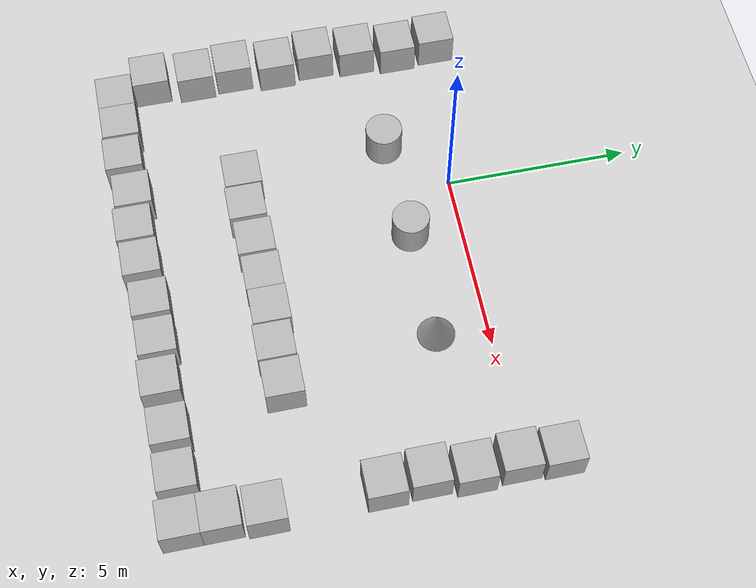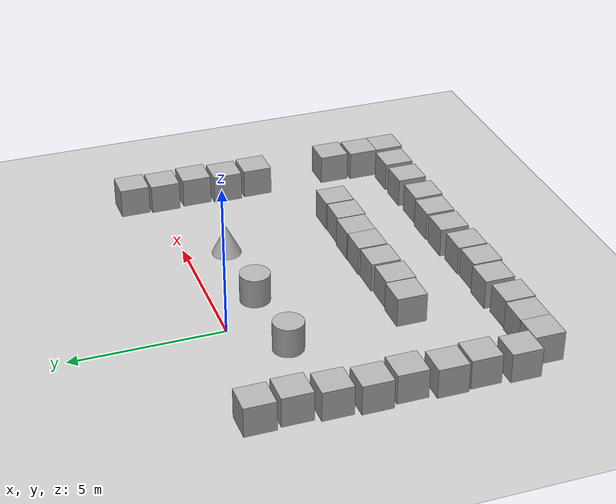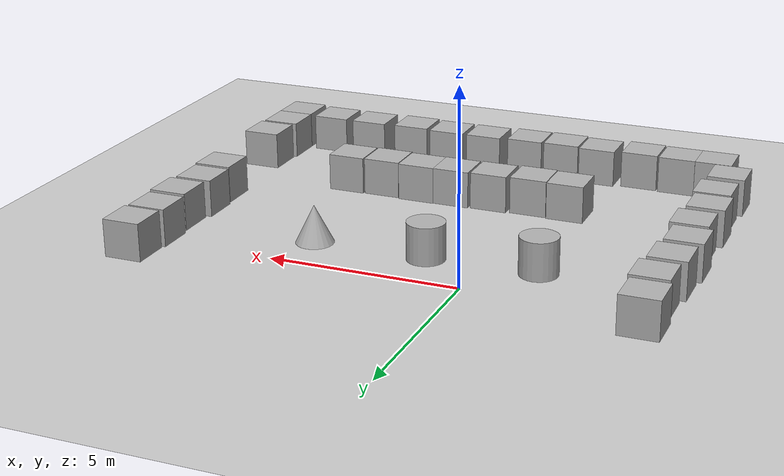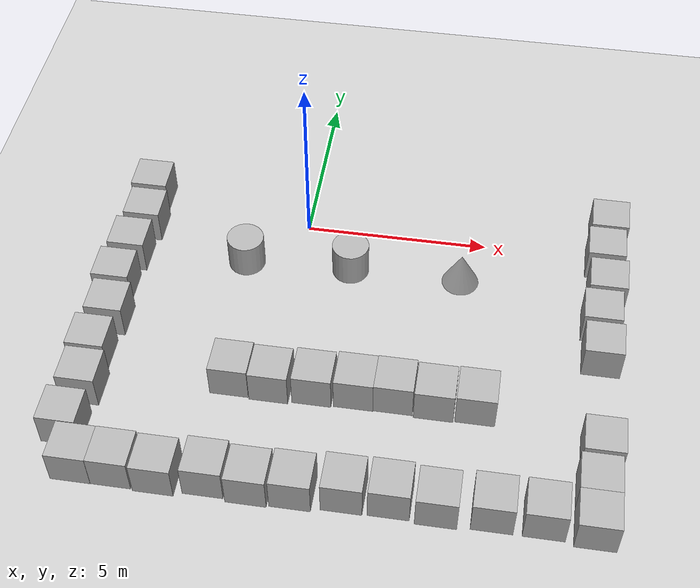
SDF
<sdf version="1.10">
 <world name="supermarket_world">
  <model name="ground_plane">
   <static>true</static>
   <link name="link">
    <collision name="collision">
     <geometry><plane><normal>0 0 1</normal><size>1 1</size></plane></geometry>
    </collision>
    <visual name="visual">
     <geometry><plane><normal>0 0 1</normal><size>100 100</size></plane></geometry>
     <material>
      <ambient>0.800000012 0.800000012 0.800000012 1</ambient>
      <diffuse>0.800000012 0.800000012 0.800000012 1</diffuse>
      <specular>0.800000012 0.800000012 0.800000012 1</specular>
     </material>
    </visual>
    <inertial>
     <mass>1</mass>
     <inertia><ixx>1</ixx><ixy>0</ixy><ixz>0</ixz><iyy>1</iyy><iyz>0</iyz><izz>1</izz></inertia>
    </inertial>
   </link>
  </model>
  <model name="box_6">
   <pose>8.3599477570648091 0.88502298679097557 0.4999990199706873 -5.4766448174674108e-17 -7.8348344244661134e-20 -3.3200572492622903e-17</pose>
   <link name="box_link">
    <inertial>
     <inertia><ixx>0.16666</ixx><ixy>0</ixy><ixz>0</ixz><iyy>0.16666</iyy><iyz>0</iyz><izz>0.16666</izz></inertia>
     <mass>1</mass>
    </inertial>
    <collision name="box_collision"><geometry><box><size>1 1 1</size></box></geometry></collision>
    <visual name="box_visual">
     <geometry><box><size>1 1 1</size></box></geometry>
     <material>
      <ambient>0.300000012 0.300000012 0.300000012 1</ambient>
      <diffuse>0.699999988 0.699999988 0.699999988 1</diffuse>
      <specular>1 1 1 1</specular>
     </material>
    </visual>
   </link>
   <static>false</static>
  </model>
  <model name="box_7">
   <pose>8.2921380726471874 -0.18658887087335663 0.49999901997068646 5.4312585427724196e-17 -7.3745845500765171e-19 -1.1733470305338631e-16</pose>
   <link name="box_link">
    <inertial>
     <inertia><ixx>0.16666</ixx><ixy>0</ixy><ixz>0</ixz><iyy>0.16666</iyy><iyz>0</iyz><izz>0.16666</izz></inertia>
     <mass>1</mass>
    </inertial>
    <collision name="box_collision"><geometry><box><size>1 1 1</size></box></geometry></collision>
    <visual name="box_visual">
     <geometry><box><size>1 1 1</size></box></geometry>
     <material>
      <ambient>0.300000012 0.300000012 0.300000012 1</ambient>
      <diffuse>0.699999988 0.699999988 0.699999988 1</diffuse>
      <specular>1 1 1 1</specular>
     </material>
    </visual>
   </link>
   <static>false</static>
  </model>
  <model name="box_8">
   <pose>8.35994921766601 -1.3357347856292385 0.49999901997068585 -3.5316034493105225e-19 -5.4564616593038525e-17 -1.4888627611804775e-16</pose>
   <link name="box_link">
    <inertial>
     <inertia><ixx>0.16666</ixx><ixy>0</ixy><ixz>0</ixz><iyy>0.16666</iyy><iyz>0</iyz><izz>0.16666</izz></inertia>
     <mass>1</mass>
    </inertial>
    <collision name="box_collision"><geometry><box><size>1 1 1</size></box></geometry></collision>
    <visual name="box_visual">
     <geometry><box><size>1 1 1</size></box></geometry>
     <material>
      <ambient>0.300000012 0.300000012 0.300000012 1</ambient>
      <diffuse>0.699999988 0.699999988 0.699999988 1</diffuse>
      <specular>1 1 1 1</specular>
     </material>
    </visual>
   </link>
   <static>false</static>
  </model>
  <model name="box_9">
   <pose>8.2394319175730963 -2.4393221170170669 0.49999901997068535 -1.2747921174698496e-19 -5.5453399765897063e-17 -1.5229980923750203e-16</pose>
   <link name="box_link">
    <inertial>
     <inertia><ixx>0.16666</ixx><ixy>0</ixy><ixz>0</ixz><iyy>0.16666</iyy><iyz>0</iyz><izz>0.16666</izz></inertia>
     <mass>1</mass>
    </inertial>
    <collision name="box_collision"><geometry><box><size>1 1 1</size></box></geometry></collision>
    <visual name="box_visual">
     <geometry><box><size>1 1 1</size></box></geometry>
     <material>
      <ambient>0.300000012 0.300000012 0.300000012 1</ambient>
      <diffuse>0.699999988 0.699999988 0.699999988 1</diffuse>
      <specular>1 1 1 1</specular>
     </material>
    </visual>
   </link>
   <static>false</static>
  </model>
  <model name="box_10">
   <pose>8.292137985640025 -3.5504486111469227 0.49999901997068585 2.5119105073607024e-19 -5.4565259392399407e-17 2.6240833761110909e-17</pose>
   <link name="box_link">
    <inertial>
     <inertia><ixx>0.16666</ixx><ixy>0</ixy><ixz>0</ixz><iyy>0.16666</iyy><iyz>0</iyz><izz>0.16666</izz></inertia>
     <mass>1</mass>
    </inertial>
    <collision name="box_collision"><geometry><box><size>1 1 1</size></box></geometry></collision>
    <visual name="box_visual">
     <geometry><box><size>1 1 1</size></box></geometry>
     <material>
      <ambient>0.300000012 0.300000012 0.300000012 1</ambient>
      <diffuse>0.699999988 0.699999988 0.699999988 1</diffuse>
      <specular>1 1 1 1</specular>
     </material>
    </visual>
   </link>
   <static>false</static>
  </model>
  <model name="box_11">
   <pose>8.3599484130359762 -6.4911661344040112 0.49999901997068685 1.2184321968921324e-19 -5.4896099746309551e-17 -1.4904533393108512e-16</pose>
   <link name="box_link">
    <inertial>
     <inertia><ixx>0.16666</ixx><ixy>0</ixy><ixz>0</ixz><iyy>0.16666</iyy><iyz>0</iyz><izz>0.16666</izz></inertia>
     <mass>1</mass>
    </inertial>
    <collision name="box_collision"><geometry><box><size>1 1 1</size></box></geometry></collision>
    <visual name="box_visual">
     <geometry><box><size>1 1 1</size></box></geometry>
     <material>
      <ambient>0.300000012 0.300000012 0.300000012 1</ambient>
      <diffuse>0.699999988 0.699999988 0.699999988 1</diffuse>
      <specular>1 1 1 1</specular>
     </material>
    </visual>
   </link>
   <static>false</static>
  </model>
  <model name="box_12">
   <pose>8.292138975080519 -7.5816466128785995 0.4999990199706868 -2.2698675383332317e-13 -2.2643068329978488e-13 1.644982497892697e-06</pose>
   <link name="box_link">
    <inertial>
     <inertia><ixx>0.16666</ixx><ixy>0</ixy><ixz>0</ixz><iyy>0.16666</iyy><iyz>0</iyz><izz>0.16666</izz></inertia>
     <mass>1</mass>
    </inertial>
    <collision name="box_collision"><geometry><box><size>1 1 1</size></box></geometry></collision>
    <visual name="box_visual">
     <geometry><box><size>1 1 1</size></box></geometry>
     <material>
      <ambient>0.300000012 0.300000012 0.300000012 1</ambient>
      <diffuse>0.699999988 0.699999988 0.699999988 1</diffuse>
      <specular>1 1 1 1</specular>
     </material>
    </visual>
   </link>
   <static>false</static>
  </model>
  <model name="box_13">
   <pose>8.292137527113967 -8.5816466128823734 0.49999901997068597 2.2076708296356033e-13 -2.2431498138324399e-13 1.6449824978575932e-06</pose>
   <link name="box_link">
    <inertial>
     <inertia><ixx>0.16666</ixx><ixy>0</ixy><ixz>0</ixz><iyy>0.16666</iyy><iyz>0</iyz><izz>0.16666</izz></inertia>
     <mass>1</mass>
    </inertial>
    <collision name="box_collision"><geometry><box><size>1 1 1</size></box></geometry></collision>
    <visual name="box_visual">
     <geometry><box><size>1 1 1</size></box></geometry>
     <material>
      <ambient>0.300000012 0.300000012 0.300000012 1</ambient>
      <diffuse>0.699999988 0.699999988 0.699999988 1</diffuse>
      <specular>1 1 1 1</specular>
     </material>
    </visual>
   </link>
   <static>false</static>
  </model>
  <model name="box_14">
   <pose>7.1004684341563049 -8.4840748178244016 0.49999901997068641 1.4005283284370249e-19 -5.5581335430422208e-17 -1.7015719702994222e-16</pose>
   <link name="box_link">
    <inertial>
     <inertia><ixx>0.16666</ixx><ixy>0</ixy><ixz>0</ixz><iyy>0.16666</iyy><iyz>0</iyz><izz>0.16666</izz></inertia>
     <mass>1</mass>
    </inertial>
    <collision name="box_collision"><geometry><box><size>1 1 1</size></box></geometry></collision>
    <visual name="box_visual">
     <geometry><box><size>1 1 1</size></box></geometry>
     <material>
      <ambient>0.300000012 0.300000012 0.300000012 1</ambient>
      <diffuse>0.699999988 0.699999988 0.699999988 1</diffuse>
      <specular>1 1 1 1</specular>
     </material>
    </visual>
   </link>
   <static>false</static>
  </model>
  <model name="box_15">
   <pose>5.8868902017453415 -8.483177013111673 0.49999901997068541 5.0667621786247898e-19 -5.4722843813639268e-17 -2.007705083077993e-16</pose>
   <link name="box_link">
    <inertial>
     <inertia><ixx>0.16666</ixx><ixy>0</ixy><ixz>0</ixz><iyy>0.16666</iyy><iyz>0</iyz><izz>0.16666</izz></inertia>
     <mass>1</mass>
    </inertial>
    <collision name="box_collision"><geometry><box><size>1 1 1</size></box></geometry></collision>
    <visual name="box_visual">
     <geometry><box><size>1 1 1</size></box></geometry>
     <material>
      <ambient>0.300000012 0.300000012 0.300000012 1</ambient>
      <diffuse>0.699999988 0.699999988 0.699999988 1</diffuse>
      <specular>1 1 1 1</specular>
     </material>
    </visual>
   </link>
   <static>false</static>
  </model>
  <model name="box_16">
   <pose>4.5793990559907982 -8.5402041557433961 0.49999901997068702 3.4103993743557963e-19 -5.4650942151699583e-17 -1.7995828096061792e-16</pose>
   <link name="box_link">
    <inertial>
     <inertia><ixx>0.16666</ixx><ixy>0</ixy><ixz>0</ixz><iyy>0.16666</iyy><iyz>0</iyz><izz>0.16666</izz></inertia>
     <mass>1</mass>
    </inertial>
    <collision name="box_collision"><geometry><box><size>1 1 1</size></box></geometry></collision>
    <visual name="box_visual">
     <geometry><box><size>1 1 1</size></box></geometry>
     <material>
      <ambient>0.300000012 0.300000012 0.300000012 1</ambient>
      <diffuse>0.699999988 0.699999988 0.699999988 1</diffuse>
      <specular>1 1 1 1</specular>
     </material>
    </visual>
   </link>
   <static>false</static>
  </model>
  <model name="box_17">
   <pose>3.4560056745353656 -8.4785526730327092 0.49999901997068719 2.9975159588562845e-19 -5.5282934451014012e-17 -1.4885680688878971e-16</pose>
   <link name="box_link">
    <inertial>
     <inertia><ixx>0.16666</ixx><ixy>0</ixy><ixz>0</ixz><iyy>0.16666</iyy><iyz>0</iyz><izz>0.16666</izz></inertia>
     <mass>1</mass>
    </inertial>
    <collision name="box_collision"><geometry><box><size>1 1 1</size></box></geometry></collision>
    <visual name="box_visual">
     <geometry><box><size>1 1 1</size></box></geometry>
     <material>
      <ambient>0.300000012 0.300000012 0.300000012 1</ambient>
      <diffuse>0.699999988 0.699999988 0.699999988 1</diffuse>
      <specular>1 1 1 1</specular>
     </material>
    </visual>
   </link>
   <static>false</static>
  </model>
  <model name="box_18">
   <pose>2.3368050941580982 -8.4969861346112285 0.49999901997068563 8.9921862608866556e-19 -5.4810453830300779e-17 -1.4942994026736365e-16</pose>
   <link name="box_link">
    <inertial>
     <inertia><ixx>0.16666</ixx><ixy>0</ixy><ixz>0</ixz><iyy>0.16666</iyy><iyz>0</iyz><izz>0.16666</izz></inertia>
     <mass>1</mass>
    </inertial>
    <collision name="box_collision"><geometry><box><size>1 1 1</size></box></geometry></collision>
    <visual name="box_visual">
     <geometry><box><size>1 1 1</size></box></geometry>
     <material>
      <ambient>0.300000012 0.300000012 0.300000012 1</ambient>
      <diffuse>0.699999988 0.699999988 0.699999988 1</diffuse>
      <specular>1 1 1 1</specular>
     </material>
    </visual>
   </link>
   <static>false</static>
  </model>
  <model name="box_19">
   <pose>1.1209091555754185 -8.5856432976933625 0.49999901997068574 2.8614643890754435e-19 -5.5290314063770497e-17 -1.5071632751643689e-16</pose>
   <link name="box_link">
    <inertial>
     <inertia><ixx>0.16666</ixx><ixy>0</ixy><ixz>0</ixz><iyy>0.16666</iyy><iyz>0</iyz><izz>0.16666</izz></inertia>
     <mass>1</mass>
    </inertial>
    <collision name="box_collision"><geometry><box><size>1 1 1</size></box></geometry></collision>
    <visual name="box_visual">
     <geometry><box><size>1 1 1</size></box></geometry>
     <material>
      <ambient>0.300000012 0.300000012 0.300000012 1</ambient>
      <diffuse>0.699999988 0.699999988 0.699999988 1</diffuse>
      <specular>1 1 1 1</specular>
     </material>
    </visual>
   </link>
   <static>false</static>
  </model>
  <model name="box_20">
   <pose>0.063885025016571007 -8.6244510410214197 0.49999901997068608 3.8644102242571229e-17 1.718197545714921e-17 -7.6517660015406847e-17</pose>
   <link name="box_link">
    <inertial>
     <inertia><ixx>0.16666</ixx><ixy>0</ixy><ixz>0</ixz><iyy>0.16666</iyy><iyz>0</iyz><izz>0.16666</izz></inertia>
     <mass>1</mass>
    </inertial>
    <collision name="box_collision"><geometry><box><size>1 1 1</size></box></geometry></collision>
    <visual name="box_visual">
     <geometry><box><size>1 1 1</size></box></geometry>
     <material>
      <ambient>0.300000012 0.300000012 0.300000012 1</ambient>
      <diffuse>0.699999988 0.699999988 0.699999988 1</diffuse>
      <specular>1 1 1 1</specular>
     </material>
    </visual>
   </link>
   <static>false</static>
  </model>
  <model name="box_21">
   <pose>-0.99485717680037133 -8.5476532571397055 0.49999901997068674 5.5218092506242785e-17 1.3141559468966683e-19 -5.8559794383059209e-17</pose>
   <link name="box_link">
    <inertial>
     <inertia><ixx>0.16666</ixx><ixy>0</ixy><ixz>0</ixz><iyy>0.16666</iyy><iyz>0</iyz><izz>0.16666</izz></inertia>
     <mass>1</mass>
    </inertial>
    <collision name="box_collision"><geometry><box><size>1 1 1</size></box></geometry></collision>
    <visual name="box_visual">
     <geometry><box><size>1 1 1</size></box></geometry>
     <material>
      <ambient>0.300000012 0.300000012 0.300000012 1</ambient>
      <diffuse>0.699999988 0.699999988 0.699999988 1</diffuse>
      <specular>1 1 1 1</specular>
     </material>
    </visual>
   </link>
   <static>false</static>
  </model>
  <model name="box_39">
   <pose>-4.6128045214521469 0.55596748361584802 0.49999901997068608 2.2393602201536981e-13 2.2643059158803212e-13 2.2042239139203951e-06</pose>
   <link name="box_link">
    <inertial>
     <inertia><ixx>0.16666</ixx><ixy>0</ixy><ixz>0</ixz><iyy>0.16666</iyy><iyz>0</iyz><izz>0.16666</izz></inertia>
     <mass>1</mass>
    </inertial>
    <collision name="box_collision"><geometry><box><size>1 1 1</size></box></geometry></collision>
    <visual name="box_visual">
     <geometry><box><size>1 1 1</size></box></geometry>
     <material>
      <ambient>0.300000012 0.300000012 0.300000012 1</ambient>
      <diffuse>0.699999988 0.699999988 0.699999988 1</diffuse>
      <specular>1 1 1 1</specular>
     </material>
    </visual>
   </link>
   <static>false</static>
  </model>
  <model name="box_40">
   <pose>-4.5346118938632927 -0.58557924364175995 0.49999901997068608 5.4957683854229216e-17 2.9292237887427006e-19 -9.6652693541560514e-18</pose>
   <link name="box_link">
    <inertial>
     <inertia><ixx>0.16666</ixx><ixy>0</ixy><ixz>0</ixz><iyy>0.16666</iyy><iyz>0</iyz><izz>0.16666</izz></inertia>
     <mass>1</mass>
    </inertial>
    <collision name="box_collision"><geometry><box><size>1 1 1</size></box></geometry></collision>
    <visual name="box_visual">
     <geometry><box><size>1 1 1</size></box></geometry>
     <material>
      <ambient>0.300000012 0.300000012 0.300000012 1</ambient>
      <diffuse>0.699999988 0.699999988 0.699999988 1</diffuse>
      <specular>1 1 1 1</specular>
     </material>
    </visual>
   </link>
   <static>false</static>
  </model>
  <model name="box_41">
   <pose>-2.1881079715456799 -8.6569159477763904 0.49999901997068696 2.7576861036004744e-19 -5.5267676813728756e-17 -1.9406289881409713e-16</pose>
   <link name="box_link">
    <inertial>
     <inertia><ixx>0.16666</ixx><ixy>0</ixy><ixz>0</ixz><iyy>0.16666</iyy><iyz>0</iyz><izz>0.16666</izz></inertia>
     <mass>1</mass>
    </inertial>
    <collision name="box_collision"><geometry><box><size>1 1 1</size></box></geometry></collision>
    <visual name="box_visual">
     <geometry><box><size>1 1 1</size></box></geometry>
     <material>
      <ambient>0.300000012 0.300000012 0.300000012 1</ambient>
      <diffuse>0.699999988 0.699999988 0.699999988 1</diffuse>
      <specular>1 1 1 1</specular>
     </material>
    </visual>
   </link>
   <static>false</static>
  </model>
  <model name="box_42">
   <pose>-3.2418673977159189 -8.6182122048493426 0.49999901997068646 2.2349278668427696e-13 2.2482926953304254e-13 1.4687570711309109e-07</pose>
   <link name="box_link">
    <inertial>
     <inertia><ixx>0.16666</ixx><ixy>0</ixy><ixz>0</ixz><iyy>0.16666</iyy><iyz>0</iyz><izz>0.16666</izz></inertia>
     <mass>1</mass>
    </inertial>
    <collision name="box_collision"><geometry><box><size>1 1 1</size></box></geometry></collision>
    <visual name="box_visual">
     <geometry><box><size>1 1 1</size></box></geometry>
     <material>
      <ambient>0.300000012 0.300000012 0.300000012 1</ambient>
      <diffuse>0.699999988 0.699999988 0.699999988 1</diffuse>
      <specular>1 1 1 1</specular>
     </material>
    </visual>
   </link>
   <static>false</static>
  </model>
  <model name="box_43">
   <pose>-4.2418673969766756 -8.6240583757139682 0.49999901997068685 2.2684200548589859e-13 -2.2332126058016842e-13 1.4682695939761831e-07</pose>
   <link name="box_link">
    <inertial>
     <inertia><ixx>0.16666</ixx><ixy>0</ixy><ixz>0</ixz><iyy>0.16666</iyy><iyz>0</iyz><izz>0.16666</izz></inertia>
     <mass>1</mass>
    </inertial>
    <collision name="box_collision"><geometry><box><size>1 1 1</size></box></geometry></collision>
    <visual name="box_visual">
     <geometry><box><size>1 1 1</size></box></geometry>
     <material>
      <ambient>0.300000012 0.300000012 0.300000012 1</ambient>
      <diffuse>0.699999988 0.699999988 0.699999988 1</diffuse>
      <specular>1 1 1 1</specular>
     </material>
    </visual>
   </link>
   <static>false</static>
  </model>
  <model name="box_44">
   <pose>-4.6649373053284666 -1.7514064736367276 0.49999901997068696 -2.712652257318908e-19 -5.457372273114345e-17 -1.4888493519853e-16</pose>
   <link name="box_link">
    <inertial>
     <inertia><ixx>0.16666</ixx><ixy>0</ixy><ixz>0</ixz><iyy>0.16666</iyy><iyz>0</iyz><izz>0.16666</izz></inertia>
     <mass>1</mass>
    </inertial>
    <collision name="box_collision"><geometry><box><size>1 1 1</size></box></geometry></collision>
    <visual name="box_visual">
     <geometry><box><size>1 1 1</size></box></geometry>
     <material>
      <ambient>0.300000012 0.300000012 0.300000012 1</ambient>
      <diffuse>0.699999988 0.699999988 0.699999988 1</diffuse>
      <specular>1 1 1 1</specular>
     </material>
    </visual>
   </link>
   <static>false</static>
  </model>
  <model name="box_45">
   <pose>-4.7707237144238945 -2.9298629494288337 0.49999901997068585 4.4574160769235318e-19 -5.603786890950952e-17 -1.4828022000280738e-16</pose>
   <link name="box_link">
    <inertial>
     <inertia><ixx>0.16666</ixx><ixy>0</ixy><ixz>0</ixz><iyy>0.16666</iyy><iyz>0</iyz><izz>0.16666</izz></inertia>
     <mass>1</mass>
    </inertial>
    <collision name="box_collision"><geometry><box><size>1 1 1</size></box></geometry></collision>
    <visual name="box_visual">
     <geometry><box><size>1 1 1</size></box></geometry>
     <material>
      <ambient>0.300000012 0.300000012 0.300000012 1</ambient>
      <diffuse>0.699999988 0.699999988 0.699999988 1</diffuse>
      <specular>1 1 1 1</specular>
     </material>
    </visual>
   </link>
   <static>false</static>
  </model>
  <model name="box_46">
   <pose>-4.6348491865295589 -4.0655745578203657 0.49999901997068541 2.3135991589015909e-19 -5.4352187937575115e-17 -1.4953602061291092e-16</pose>
   <link name="box_link">
    <inertial>
     <inertia><ixx>0.16666</ixx><ixy>0</ixy><ixz>0</ixz><iyy>0.16666</iyy><iyz>0</iyz><izz>0.16666</izz></inertia>
     <mass>1</mass>
    </inertial>
    <collision name="box_collision"><geometry><box><size>1 1 1</size></box></geometry></collision>
    <visual name="box_visual">
     <geometry><box><size>1 1 1</size></box></geometry>
     <material>
      <ambient>0.300000012 0.300000012 0.300000012 1</ambient>
      <diffuse>0.699999988 0.699999988 0.699999988 1</diffuse>
      <specular>1 1 1 1</specular>
     </material>
    </visual>
   </link>
   <static>false</static>
  </model>
  <model name="box_47">
   <pose>-4.7707230229319517 -5.275420600263752 0.49999901997068646 6.0037976482516195e-19 -5.5015603844332259e-17 -1.503998351625595e-16</pose>
   <link name="box_link">
    <inertial>
     <inertia><ixx>0.16666</ixx><ixy>0</ixy><ixz>0</ixz><iyy>0.16666</iyy><iyz>0</iyz><izz>0.16666</izz></inertia>
     <mass>1</mass>
    </inertial>
    <collision name="box_collision"><geometry><box><size>1 1 1</size></box></geometry></collision>
    <visual name="box_visual">
     <geometry><box><size>1 1 1</size></box></geometry>
     <material>
      <ambient>0.300000012 0.300000012 0.300000012 1</ambient>
      <diffuse>0.699999988 0.699999988 0.699999988 1</diffuse>
      <specular>1 1 1 1</specular>
     </material>
    </visual>
   </link>
   <static>false</static>
  </model>
  <model name="box_48">
   <pose>-4.6903190441895237 -6.3633216132210517 0.49999901997068574 6.5094638094250305e-20 -5.4978811356181676e-17 -1.4831213721568048e-16</pose>
   <link name="box_link">
    <inertial>
     <inertia><ixx>0.16666</ixx><ixy>0</ixy><ixz>0</ixz><iyy>0.16666</iyy><iyz>0</iyz><izz>0.16666</izz></inertia>
     <mass>1</mass>
    </inertial>
    <collision name="box_collision"><geometry><box><size>1 1 1</size></box></geometry></collision>
    <visual name="box_visual">
     <geometry><box><size>1 1 1</size></box></geometry>
     <material>
      <ambient>0.300000012 0.300000012 0.300000012 1</ambient>
      <diffuse>0.699999988 0.699999988 0.699999988 1</diffuse>
      <specular>1 1 1 1</specular>
     </material>
    </visual>
   </link>
   <static>false</static>
  </model>
  <model name="box_49">
   <pose>-4.7947207584339306 -7.6123405254444796 0.49999901997068547 4.1951374572102127e-19 5.3998947685988208e-17 7.3234894436937971e-17</pose>
   <link name="box_link">
    <inertial>
     <inertia><ixx>0.16666</ixx><ixy>0</ixy><ixz>0</ixz><iyy>0.16666</iyy><iyz>0</iyz><izz>0.16666</izz></inertia>
     <mass>1</mass>
    </inertial>
    <collision name="box_collision"><geometry><box><size>1 1 1</size></box></geometry></collision>
    <visual name="box_visual">
     <geometry><box><size>1 1 1</size></box></geometry>
     <material>
      <ambient>0.300000012 0.300000012 0.300000012 1</ambient>
      <diffuse>0.699999988 0.699999988 0.699999988 1</diffuse>
      <specular>1 1 1 1</specular>
     </material>
    </visual>
   </link>
   <static>false</static>
  </model>
  <model name="box_64">
   <pose>5.2336465985425793 -5.5191032437784777 0.49999901997068524 -2.3857306278469071e-19 -5.5196187198336426e-17 -1.4815539363312702e-16</pose>
   <link name="box_link">
    <inertial>
     <inertia><ixx>0.16666</ixx><ixy>0</ixy><ixz>0</ixz><iyy>0.16666</iyy><iyz>0</iyz><izz>0.16666</izz></inertia>
     <mass>1</mass>
    </inertial>
    <collision name="box_collision"><geometry><box><size>1 1 1</size></box></geometry></collision>
    <visual name="box_visual">
     <geometry><box><size>1 1 1</size></box></geometry>
     <material>
      <ambient>0.300000012 0.300000012 0.300000012 1</ambient>
      <diffuse>0.699999988 0.699999988 0.699999988 1</diffuse>
      <specular>1 1 1 1</specular>
     </material>
    </visual>
   </link>
   <static>false</static>
  </model>
  <model name="box_65">
   <pose>4.1976097545647608 -5.543812047953586 0.4999990199706853 2.6349555747305811e-19 -5.5037712683849256e-17 -1.4804536551088521e-16</pose>
   <link name="box_link">
    <inertial>
     <inertia><ixx>0.16666</ixx><ixy>0</ixy><ixz>0</ixz><iyy>0.16666</iyy><iyz>0</iyz><izz>0.16666</izz></inertia>
     <mass>1</mass>
    </inertial>
    <collision name="box_collision"><geometry><box><size>1 1 1</size></box></geometry></collision>
    <visual name="box_visual">
     <geometry><box><size>1 1 1</size></box></geometry>
     <material>
      <ambient>0.300000012 0.300000012 0.300000012 1</ambient>
      <diffuse>0.699999988 0.699999988 0.699999988 1</diffuse>
      <specular>1 1 1 1</specular>
     </material>
    </visual>
   </link>
   <static>false</static>
  </model>
  <model name="box_66">
   <pose>3.1695528772318178 -5.4947899329310719 0.49999901997068624 -2.259851641029349e-13 2.2554081987978093e-13 3.4498173716493621e-06</pose>
   <link name="box_link">
    <inertial>
     <inertia><ixx>0.16666</ixx><ixy>0</ixy><ixz>0</ixz><iyy>0.16666</iyy><iyz>0</iyz><izz>0.16666</izz></inertia>
     <mass>1</mass>
    </inertial>
    <collision name="box_collision"><geometry><box><size>1 1 1</size></box></geometry></collision>
    <visual name="box_visual">
     <geometry><box><size>1 1 1</size></box></geometry>
     <material>
      <ambient>0.300000012 0.300000012 0.300000012 1</ambient>
      <diffuse>0.699999988 0.699999988 0.699999988 1</diffuse>
      <specular>1 1 1 1</specular>
     </material>
    </visual>
   </link>
   <static>false</static>
  </model>
  <model name="box_67">
   <pose>2.1695529356278169 -5.5117486546028918 0.49999901997068646 2.2565212740763925e-13 -2.2687370819293206e-13 3.4500291824428532e-06</pose>
   <link name="box_link">
    <inertial>
     <inertia><ixx>0.16666</ixx><ixy>0</ixy><ixz>0</ixz><iyy>0.16666</iyy><iyz>0</iyz><izz>0.16666</izz></inertia>
     <mass>1</mass>
    </inertial>
    <collision name="box_collision"><geometry><box><size>1 1 1</size></box></geometry></collision>
    <visual name="box_visual">
     <geometry><box><size>1 1 1</size></box></geometry>
     <material>
      <ambient>0.300000012 0.300000012 0.300000012 1</ambient>
      <diffuse>0.699999988 0.699999988 0.699999988 1</diffuse>
      <specular>1 1 1 1</specular>
     </material>
    </visual>
   </link>
   <static>false</static>
  </model>
  <model name="box_68">
   <pose>1.1110115866735821 -5.547493784916437 0.49999901997068619 2.4022578305007944e-19 -5.5377160075073371e-17 -1.4870663619955007e-16</pose>
   <link name="box_link">
    <inertial>
     <inertia><ixx>0.16666</ixx><ixy>0</ixy><ixz>0</ixz><iyy>0.16666</iyy><iyz>0</iyz><izz>0.16666</izz></inertia>
     <mass>1</mass>
    </inertial>
    <collision name="box_collision"><geometry><box><size>1 1 1</size></box></geometry></collision>
    <visual name="box_visual">
     <geometry><box><size>1 1 1</size></box></geometry>
     <material>
      <ambient>0.300000012 0.300000012 0.300000012 1</ambient>
      <diffuse>0.699999988 0.699999988 0.699999988 1</diffuse>
      <specular>1 1 1 1</specular>
     </material>
    </visual>
   </link>
   <static>false</static>
  </model>
  <model name="box_69">
   <pose>0.016060290425803814 -5.6064436573253262 0.49999901997068646 -5.0375488545114997e-17 -4.4912940976310665e-18 -6.7413810792287075e-17</pose>
   <link name="box_link">
    <inertial>
     <inertia><ixx>0.16666</ixx><ixy>0</ixy><ixz>0</ixz><iyy>0.16666</iyy><iyz>0</iyz><izz>0.16666</izz></inertia>
     <mass>1</mass>
    </inertial>
    <collision name="box_collision"><geometry><box><size>1 1 1</size></box></geometry></collision>
    <visual name="box_visual">
     <geometry><box><size>1 1 1</size></box></geometry>
     <material>
      <ambient>0.300000012 0.300000012 0.300000012 1</ambient>
      <diffuse>0.699999988 0.699999988 0.699999988 1</diffuse>
      <specular>1 1 1 1</specular>
     </material>
    </visual>
   </link>
   <static>false</static>
  </model>
  <model name="box_70">
   <pose>-1.0076200778333799 -5.5626199242556087 0.49999901997068713 -6.0679508685670782e-20 -5.5314525430499359e-17 -1.5193391988420357e-16</pose>
   <link name="box_link">
    <inertial>
     <inertia><ixx>0.16666</ixx><ixy>0</ixy><ixz>0</ixz><iyy>0.16666</iyy><iyz>0</iyz><izz>0.16666</izz></inertia>
     <mass>1</mass>
    </inertial>
    <collision name="box_collision"><geometry><box><size>1 1 1</size></box></geometry></collision>
    <visual name="box_visual">
     <geometry><box><size>1 1 1</size></box></geometry>
     <material>
      <ambient>0.300000012 0.300000012 0.300000012 1</ambient>
      <diffuse>0.699999988 0.699999988 0.699999988 1</diffuse>
      <specular>1 1 1 1</specular>
     </material>
    </visual>
   </link>
   <static>false</static>
  </model>
  <model name="cone">
   <pose>4.4307911775048323 -1.3646004965205178 0.49999897289205419 1.2952830567139893e-06 -1.29682160324177e-06 1.8469798463700451e-11</pose>
   <link name="cone_link">
    <inertial>
     <inertia>
      <ixx>0.074999999999999997</ixx>
      <ixy>0</ixy>
      <ixz>0</ixz>
      <iyy>0.074999999999999997</iyy>
      <iyz>0</iyz>
      <izz>0.074999999999999997</izz>
     </inertia>
     <mass>1</mass>
    </inertial>
    <collision name="cone_collision">
     <geometry><cone><radius>0.5</radius><length>1</length></cone></geometry>
    </collision>
    <visual name="cone_visual">
     <geometry><cone><radius>0.5</radius><length>1</length></cone></geometry>
     <material>
      <ambient>0.300000012 0.300000012 0.300000012 1</ambient>
      <diffuse>0.699999988 0.699999988 0.699999988 1</diffuse>
      <specular>1 1 1 1</specular>
     </material>
    </visual>
   </link>
   <static>false</static>
  </model>
  <model name="cylinder">
   <pose>1.4025405738257621 -1.3923171053591887 0.49999963141344511 6.0786314466853394e-17 -5.5578960012386655e-17 -2.6562115012734753e-17</pose>
   <link name="cylinder_link">
    <inertial>
     <inertia>
      <ixx>0.14580000000000001</ixx>
      <ixy>0</ixy>
      <ixz>0</ixz>
      <iyy>0.14580000000000001</iyy>
      <iyz>0</iyz>
      <izz>0.125</izz>
     </inertia>
     <mass>1</mass>
    </inertial>
    <collision name="cylinder_collision">
     <geometry><cylinder><radius>0.5</radius><length>1</length></cylinder></geometry>
    </collision>
    <visual name="cylinder_visual">
     <geometry><cylinder><radius>0.5</radius><length>1</length></cylinder></geometry>
     <material>
      <ambient>0.300000012 0.300000012 0.300000012 1</ambient>
      <diffuse>0.699999988 0.699999988 0.699999988 1</diffuse>
      <specular>1 1 1 1</specular>
     </material>
    </visual>
   </link>
   <static>false</static>
  </model>
  <model name="cylinder_0">
   <pose>-1.4783341573866426 -1.5221254224312348 0.49999963141344511 2.4765878948993971e-17 9.6046811514052019e-17 3.5403765031220859e-17</pose>
   <link name="cylinder_link">
    <inertial>
     <inertia>
      <ixx>0.14580000000000001</ixx>
      <ixy>0</ixy>
      <ixz>0</ixz>
      <iyy>0.14580000000000001</iyy>
      <iyz>0</iyz>
      <izz>0.125</izz>
     </inertia>
     <mass>1</mass>
    </inertial>
    <collision name="cylinder_collision">
     <geometry><cylinder><radius>0.5</radius><length>1</length></cylinder></geometry>
    </collision>
    <visual name="cylinder_visual">
     <geometry><cylinder><radius>0.5</radius><length>1</length></cylinder></geometry>
     <material>
      <ambient>0.300000012 0.300000012 0.300000012 1</ambient>
      <diffuse>0.699999988 0.699999988 0.699999988 1</diffuse>
      <specular>1 1 1 1</specular>
     </material>
    </visual>
   </link>
   <static>false</static>
  </model>
 </world>
</sdf>
